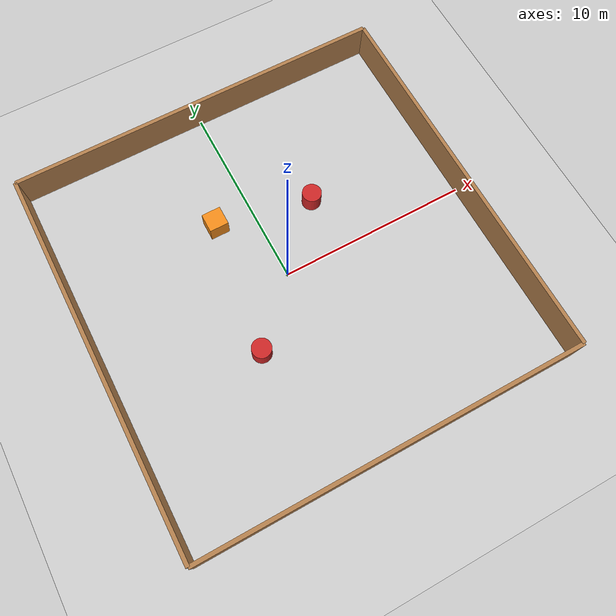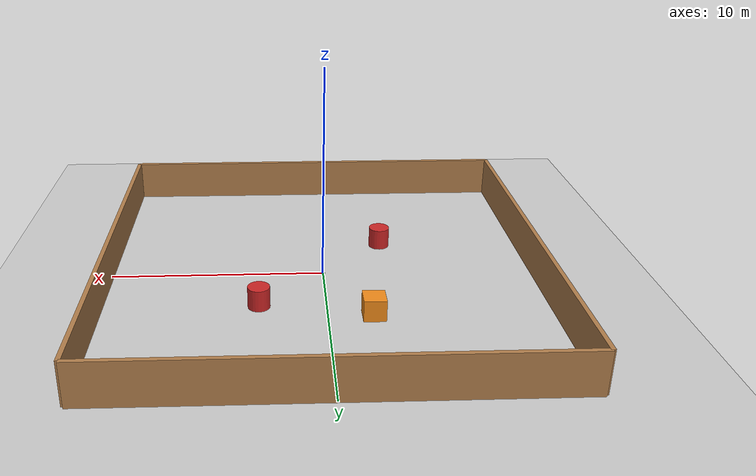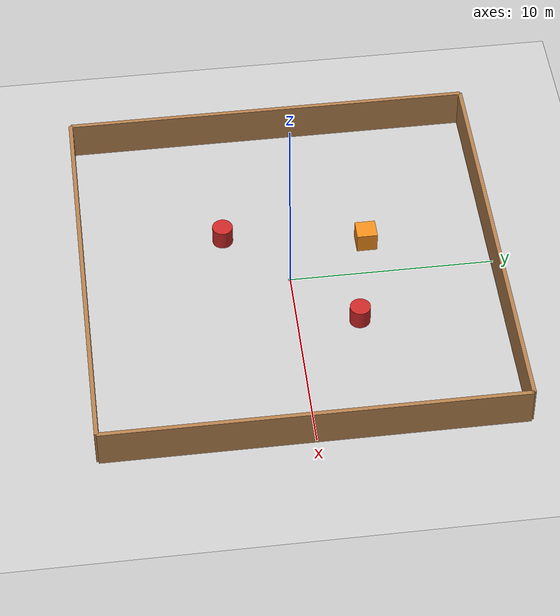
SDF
<?xml version="1.0" ?>
<sdf version="1.6">
  <world name="swarm_arena">

    <!-- Basic world settings -->
    <gravity>0 0 -9.8</gravity>
    <magnetic_field>6e-06 2.3e-05 -4.2e-05</magnetic_field>
    <atmosphere type="adiabatic"/>

    <!-- Physics settings optimized for swarm robotics -->
    <physics default="0" name="default_physics" type="ode">
      <max_step_size>0.001</max_step_size>
      <real_time_factor>1</real_time_factor>
      <real_time_update_rate>1000</real_time_update_rate>
    </physics>

    <!-- Scene settings -->
    <scene>
      <ambient>0.4 0.4 0.4 1</ambient>
      <background>0.7 0.7 0.7 1</background>
      <shadows>true</shadows>
    </scene>

    <!-- Sun -->
    <include>
      <uri>model://sun</uri>
    </include>

    <!-- Ground plane -->
    <model name="ground_plane">
      <static>true</static>
      <link name="link">
        <collision name="collision">
          <geometry>
            <plane>
              <normal>0 0 1</normal>
              <size>20 20</size>
            </plane>
          </geometry>
        </collision>
        <visual name="visual">
          <geometry>
            <plane>
              <normal>0 0 1</normal>
              <size>20 20</size>
            </plane>
          </geometry>
          <material>
            <script>
              <uri>file://media/materials/scripts/gazebo.material</uri>
              <name>Gazebo/Grey</name>
            </script>
          </material>
        </visual>
      </link>
    </model>

    <!-- Arena walls -->
    <!-- North wall -->
    <model name="north_wall">
      <static>true</static>
      <pose>0 10 1 0 0 0</pose>
      <link name="link">
        <collision name="collision">
          <geometry>
            <box>
              <size>20 0.2 2</size>
            </box>
          </geometry>
        </collision>
        <visual name="visual">
          <geometry>
            <box>
              <size>20 0.2 2</size>
            </box>
          </geometry>
          <material>
            <script>
              <uri>file://media/materials/scripts/gazebo.material</uri>
              <name>Gazebo/Wood</name>
            </script>
          </material>
        </visual>
      </link>
    </model>

    <!-- South wall -->
    <model name="south_wall">
      <static>true</static>
      <pose>0 -10 1 0 0 0</pose>
      <link name="link">
        <collision name="collision">
          <geometry>
            <box>
              <size>20 0.2 2</size>
            </box>
          </geometry>
        </collision>
        <visual name="visual">
          <geometry>
            <box>
              <size>20 0.2 2</size>
            </box>
          </geometry>
          <material>
            <script>
              <uri>file://media/materials/scripts/gazebo.material</uri>
              <name>Gazebo/Wood</name>
            </script>
          </material>
        </visual>
      </link>
    </model>

    <!-- East wall -->
    <model name="east_wall">
      <static>true</static>
      <pose>10 0 1 0 0 0</pose>
      <link name="link">
        <collision name="collision">
          <geometry>
            <box>
              <size>0.2 20 2</size>
            </box>
          </geometry>
        </collision>
        <visual name="visual">
          <geometry>
            <box>
              <size>0.2 20 2</size>
            </box>
          </geometry>
          <material>
            <script>
              <uri>file://media/materials/scripts/gazebo.material</uri>
              <name>Gazebo/Wood</name>
            </script>
          </material>
        </visual>
      </link>
    </model>

    <!-- West wall -->
    <model name="west_wall">
      <static>true</static>
      <pose>-10 0 1 0 0 0</pose>
      <link name="link">
        <collision name="collision">
          <geometry>
            <box>
              <size>0.2 20 2</size>
            </box>
          </geometry>
        </collision>
        <visual name="visual">
          <geometry>
            <box>
              <size>0.2 20 2</size>
            </box>
          </geometry>
          <material>
            <script>
              <uri>file://media/materials/scripts/gazebo.material</uri>
              <name>Gazebo/Wood</name>
            </script>
          </material>
        </visual>
      </link>
    </model>

    <!-- Static obstacles for path planning -->
    <model name="obstacle_1">
      <static>true</static>
      <pose>3 3 0.5 0 0 0</pose>
      <link name="link">
        <collision name="collision">
          <geometry>
            <cylinder>
              <radius>0.5</radius>
              <length>1</length>
            </cylinder>
          </geometry>
        </collision>
        <visual name="visual">
          <geometry>
            <cylinder>
              <radius>0.5</radius>
              <length>1</length>
            </cylinder>
          </geometry>
          <material>
            <script>
              <uri>file://media/materials/scripts/gazebo.material</uri>
              <name>Gazebo/Red</name>
            </script>
          </material>
        </visual>
      </link>
    </model>

    <model name="obstacle_2">
      <static>true</static>
      <pose>-3 -3 0.5 0 0 0</pose>
      <link name="link">
        <collision name="collision">
          <geometry>
            <cylinder>
              <radius>0.5</radius>
              <length>1</length>
            </cylinder>
          </geometry>
        </collision>
        <visual name="visual">
          <geometry>
            <cylinder>
              <radius>0.5</radius>
              <length>1</length>
            </cylinder>
          </geometry>
          <material>
            <script>
              <uri>file://media/materials/scripts/gazebo.material</uri>
              <name>Gazebo/Red</name>
            </script>
          </material>
        </visual>
      </link>
    </model>

    <model name="obstacle_3">
      <static>true</static>
      <pose>-2 4 0.5 0 0 0</pose>
      <link name="link">
        <collision name="collision">
          <geometry>
            <box>
              <size>1 1 1</size>
            </box>
          </geometry>
        </collision>
        <visual name="visual">
          <geometry>
            <box>
              <size>1 1 1</size>
            </box>
          </geometry>
          <material>
            <script>
              <uri>file://media/materials/scripts/gazebo.material</uri>
              <name>Gazebo/Orange</name>
            </script>
          </material>
        </visual>
      </link>
    </model>

    <!-- Formation markers (visual only) -->
    <model name="marker_center">
      <static>true</static>
      <pose>0 0 0.01 0 0 0</pose>
      <link name="link">
        <visual name="visual">
          <geometry>
            <cylinder>
              <radius>0.1</radius>
              <length>0.01</length>
            </cylinder>
          </geometry>
          <material>
            <script>
              <uri>file://media/materials/scripts/gazebo.material</uri>
              <name>Gazebo/Green</name>
            </script>
          </material>
        </visual>
      </link>
    </model>

    <!-- Additional lighting for better visibility -->
    <light name="light1" type="point">
      <pose>5 5 10 0 0 0</pose>
      <diffuse>0.8 0.8 0.8 1</diffuse>
      <specular>0.2 0.2 0.2 1</specular>
      <attenuation>
        <range>20</range>
        <constant>0.1</constant>
        <linear>0.01</linear>
        <quadratic>0.001</quadratic>
      </attenuation>
      <cast_shadows>false</cast_shadows>
    </light>

    <light name="light2" type="point">
      <pose>-5 -5 10 0 0 0</pose>
      <diffuse>0.8 0.8 0.8 1</diffuse>
      <specular>0.2 0.2 0.2 1</specular>
      <attenuation>
        <range>20</range>
        <constant>0.1</constant>
        <linear>0.01</linear>
        <quadratic>0.001</quadratic>
      </attenuation>
      <cast_shadows>false</cast_shadows>
    </light>

    <light name="light3" type="point">
      <pose>5 -5 10 0 0 0</pose>
      <diffuse>0.8 0.8 0.8 1</diffuse>
      <specular>0.2 0.2 0.2 1</specular>
      <attenuation>
        <range>20</range>
        <constant>0.1</constant>
        <linear>0.01</linear>
        <quadratic>0.001</quadratic>
      </attenuation>
      <cast_shadows>false</cast_shadows>
    </light>

    <light name="light4" type="point">
      <pose>-5 5 10 0 0 0</pose>
      <diffuse>0.8 0.8 0.8 1</diffuse>
      <specular>0.2 0.2 0.2 1</specular>
      <attenuation>
        <range>20</range>
        <constant>0.1</constant>
        <linear>0.01</linear>
        <quadratic>0.001</quadratic>
      </attenuation>
      <cast_shadows>false</cast_shadows>
    </light>

    <!-- GUI settings -->
    <gui fullscreen='0'>
      <camera name='user_camera'>
        <pose frame=''>0 0 15 0 1.5708 1.5708</pose>
        <view_controller>orbit</view_controller>
        <projection_type>perspective</projection_type>
      </camera>
    </gui>

  </world>
</sdf>
